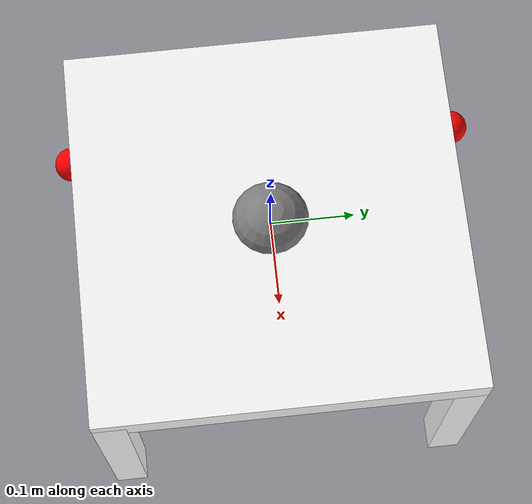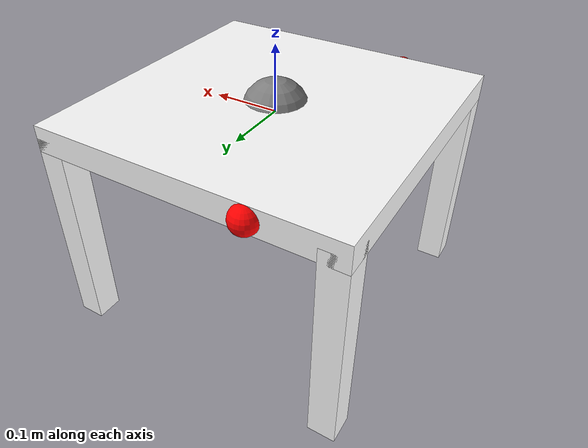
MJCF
<mujoco model="stool">
  <compiler angle="radian" />

  <default>
    <default class="stool_leg">
      <geom type="box" size="0.02 0.02 0.16" pos="0 0 -0.2" />
    </default>
  </default>

  <asset>
    <material name="white_wood" rgba="1 1 1 1" />
  </asset>

  <worldbody>
   <body name="stool" pos="0 0 0">

      <freejoint name="stool_root" />
      <site name="stool_root" pos="0 0 0" size="0.05" type="sphere" rgba="0.5 0.5 0.5 1"/>
      <site name="left_hand_contact" pos="-0.1 0.23 0" size="0.02" type="sphere" rgba="1 0 0 1"/>
      <site name="right_hand_contact" pos="-0.1 -0.23 0" size="0.02" type="sphere" rgba="1 0 0 1"/>

      <geom name="seat" type="box" size="0.23 0.23 0.02" pos="0 0 0" material="white_wood"/>

      <geom name="leg1" class="stool_leg" pos="0.21 0.21 -0.16" material="white_wood"/>

      <geom name="leg2" class="stool_leg" pos="0.21 -0.21 -0.16" material="white_wood"/>

      <geom name="leg3" class="stool_leg" pos="-0.21 0.21 -0.16" material="white_wood"/>

      <geom name="leg4" class="stool_leg" pos="-0.21 -0.21 -0.16" material="white_wood"/>
    </body>
  </worldbody>
</mujoco>
